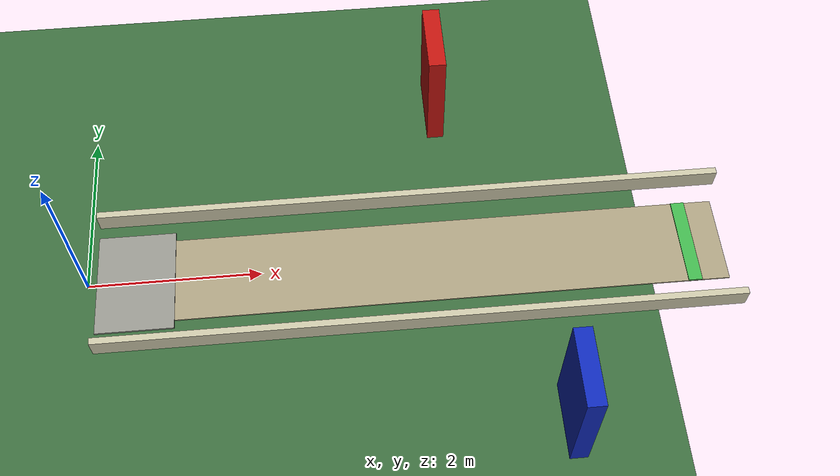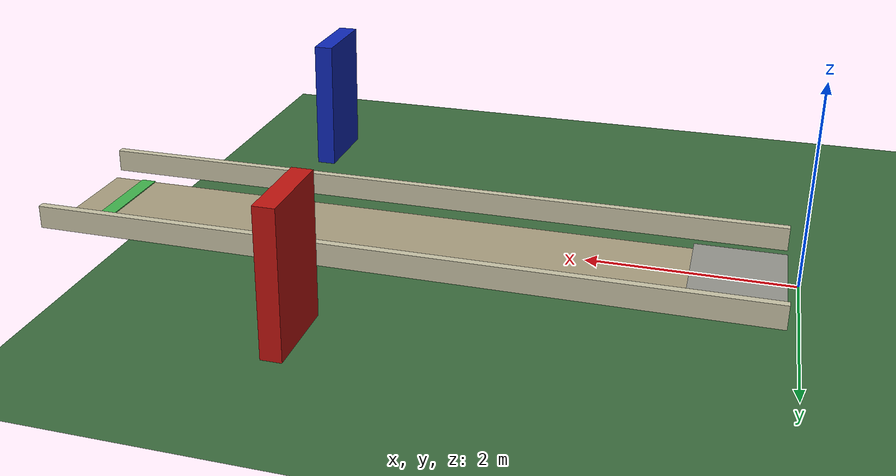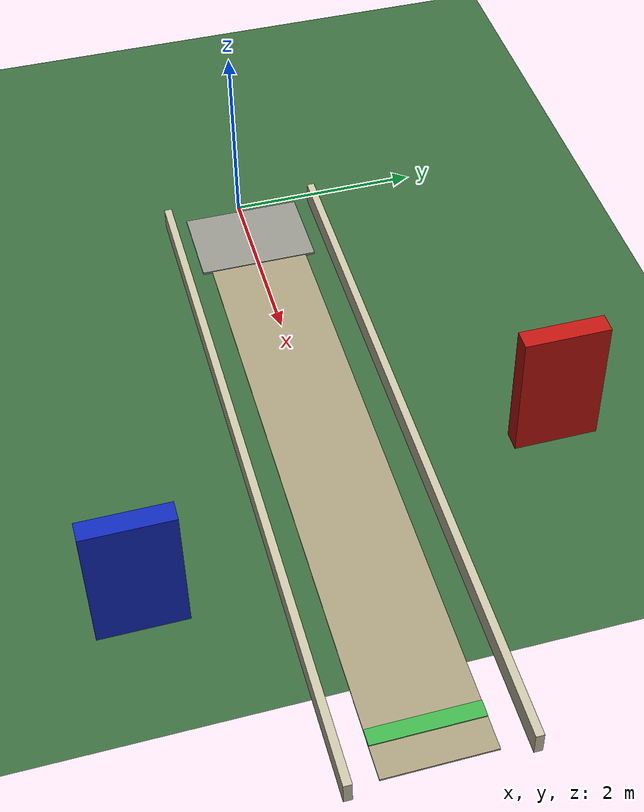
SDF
<?xml version="1.0"?>
<sdf version="1.6">
  <world name="mari_nav2_stage1_straight_path">
    <gravity>0 0 -9.80665</gravity>

    <spherical_coordinates>
      <heading_deg>180</heading_deg>
    </spherical_coordinates>

    <physics name="default_physics" default="true" type="ode">
      <max_step_size>0.001</max_step_size>
      <real_time_factor>1.0</real_time_factor>
      <real_time_update_rate>1000</real_time_update_rate>
    </physics>

    <scene>
      <ambient>0.60 0.61 0.58 1</ambient>
      <background>0.68 0.80 0.98 1</background>
      <shadows>true</shadows>
    </scene>

    <light name="sun" type="directional">
      <cast_shadows>true</cast_shadows>
      <pose>0 0 12 0 0 0</pose>
      <diffuse>0.95 0.92 0.84 1</diffuse>
      <specular>0.2 0.2 0.18 1</specular>
      <direction>-0.25 0.20 -0.94</direction>
    </light>

    <model name="stage1_ground">
      <static>true</static>
      <link name="link">
        <collision name="ground_collision">
          <geometry><plane><normal>0 0 1</normal><size>13 8</size></plane></geometry>
        </collision>
        <visual name="grass_visual">
          <geometry><plane><normal>0 0 1</normal><size>13 8</size></plane></geometry>
          <material><ambient>0.23 0.42 0.24 1</ambient><diffuse>0.23 0.42 0.24 1</diffuse></material>
        </visual>
      </link>
    </model>

    <model name="stage1_path">
      <static>true</static>
      <link name="link">
        <visual name="straight_walkway">
          <pose>3.8 0 0.010 0 0 0</pose>
          <geometry><box><size>7.2 1.05 0.018</size></box></geometry>
          <material><ambient>0.66 0.62 0.50 1</ambient><diffuse>0.66 0.62 0.50 1</diffuse></material>
        </visual>
        <visual name="start_pad">
          <pose>0.55 0 0.016 0 0 0</pose>
          <geometry><box><size>0.9 1.25 0.025</size></box></geometry>
          <material><ambient>0.58 0.58 0.55 1</ambient><diffuse>0.58 0.58 0.55 1</diffuse></material>
        </visual>
        <visual name="goal_band">
          <pose>7.0 0 0.020 0 0 0</pose>
          <geometry><box><size>0.16 1.05 0.022</size></box></geometry>
          <material><ambient>0.25 0.70 0.30 1</ambient><diffuse>0.25 0.70 0.30 1</diffuse></material>
        </visual>
      </link>
    </model>

    <model name="stage1_side_boundaries">
      <static>true</static>
      <link name="link">
        <collision name="left_rail_collision">
          <pose>3.8 0.82 0.12 0 0 0</pose>
          <geometry><box><size>7.4 0.08 0.24</size></box></geometry>
        </collision>
        <visual name="left_rail_visual">
          <pose>3.8 0.82 0.12 0 0 0</pose>
          <geometry><box><size>7.4 0.08 0.24</size></box></geometry>
          <material><ambient>0.78 0.76 0.65 1</ambient><diffuse>0.78 0.76 0.65 1</diffuse></material>
        </visual>
        <collision name="right_rail_collision">
          <pose>3.8 -0.82 0.12 0 0 0</pose>
          <geometry><box><size>7.4 0.08 0.24</size></box></geometry>
        </collision>
        <visual name="right_rail_visual">
          <pose>3.8 -0.82 0.12 0 0 0</pose>
          <geometry><box><size>7.4 0.08 0.24</size></box></geometry>
          <material><ambient>0.78 0.76 0.65 1</ambient><diffuse>0.78 0.76 0.65 1</diffuse></material>
        </visual>
      </link>
    </model>

    <model name="stage1_landmarks">
      <static>true</static>
      <link name="link">
        <visual name="red_panel">
          <pose>4.2 2.2 0.70 0 0 0</pose>
          <geometry><box><size>0.20 0.85 1.40</size></box></geometry>
          <material><ambient>0.75 0.08 0.06 1</ambient><diffuse>0.75 0.08 0.06 1</diffuse></material>
        </visual>
        <visual name="blue_panel">
          <pose>5.3 -2.1 0.70 0 0 0</pose>
          <geometry><box><size>0.20 0.85 1.40</size></box></geometry>
          <material><ambient>0.06 0.16 0.72 1</ambient><diffuse>0.06 0.16 0.72 1</diffuse></material>
        </visual>
      </link>
    </model>
  </world>
</sdf>
